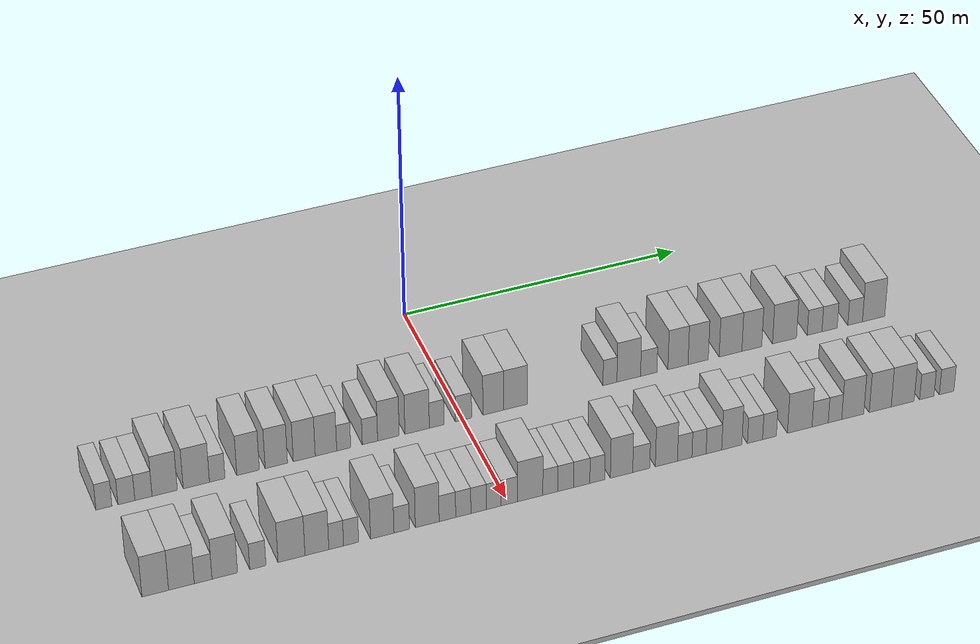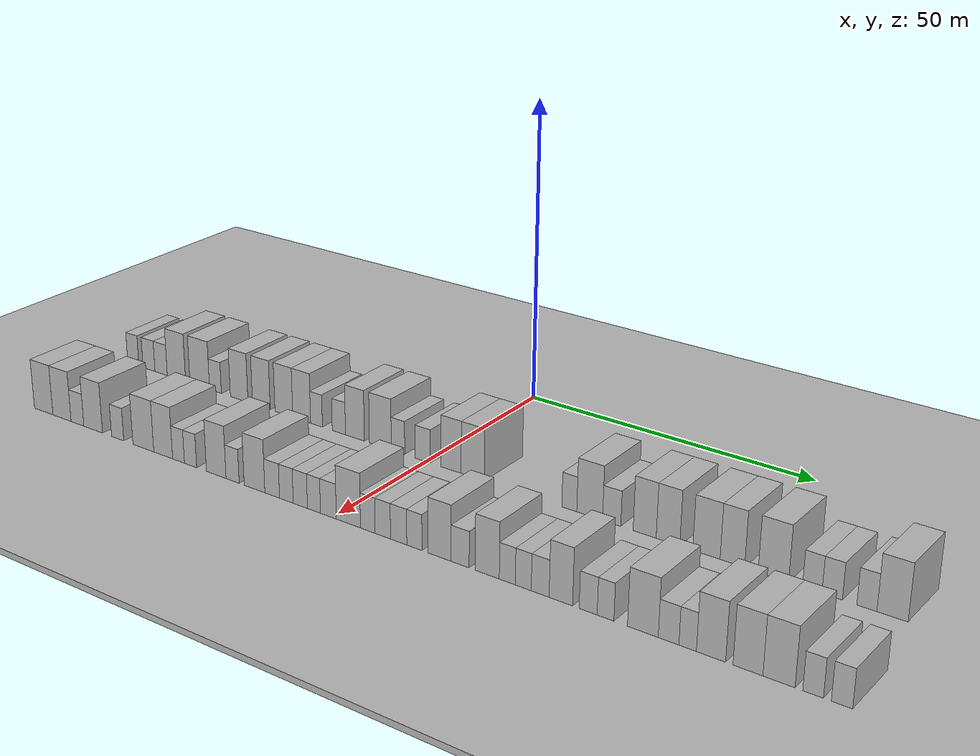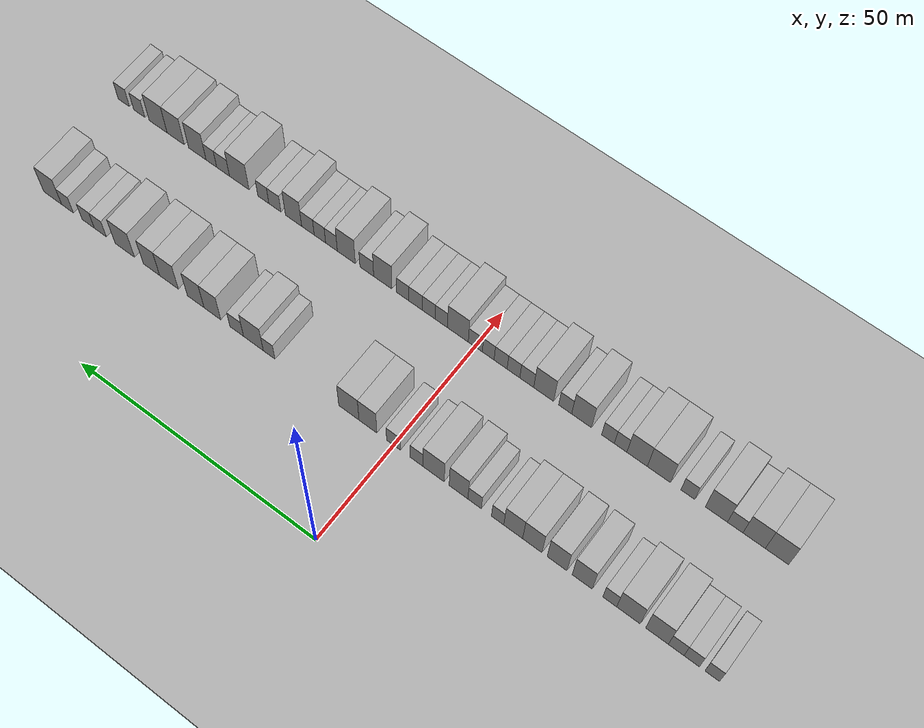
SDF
<sdf version="1.6">
 <world name="default">
  <include><name>ground_plane_1</name><uri>model://HANNAS_ground_plane</uri></include>
  <include>
   <name>ground_plane_2</name>
   <uri>model://HANNAS_ground_plane</uri>
   <pose>100 0 0  0 0 0</pose>
  </include>
  <model name="building_33">
   <static>1</static>
   <pose>25.0000 -61.6120 0 0.000000 0.000000 0.000000</pose>
   <link name="link">
    <pose>0 0 3.00 0 0 0</pose>
    <collision name="collision"><geometry><box><size>10.0000 2.6590 6.0000</size></box></geometry></collision>
    <visual name="visual">
     <cast_shadows>0</cast_shadows>
     <geometry><box><size>10.0000 2.6590 6.0000</size></box></geometry>
     <material>
      <script>
       <uri>model://HANNAS_wall/materials/scripts</uri>
       <uri>model://HANNAS_wall/materials/textures</uri>
       <name>vrc/HANNAS_wall</name>
      </script>
     </material>
    </visual>
   </link>
  </model>
  <model name="building_34">
   <static>1</static>
   <pose>25.0000 -57.8716 0 0.000000 0.000000 0.000000</pose>
   <link name="link">
    <pose>0 0 3.00 0 0 0</pose>
    <collision name="collision"><geometry><box><size>10.0000 2.8217 6.0000</size></box></geometry></collision>
    <visual name="visual">
     <cast_shadows>0</cast_shadows>
     <geometry><box><size>10.0000 2.8217 6.0000</size></box></geometry>
     <material>
      <script>
       <uri>model://HANNAS_wall/materials/scripts</uri>
       <uri>model://HANNAS_wall/materials/textures</uri>
       <name>vrc/HANNAS_wall</name>
      </script>
     </material>
    </visual>
   </link>
  </model>
  <model name="building_35">
   <static>1</static>
   <pose>25.0000 -55.0200 0 0.000000 0.000000 0.000000</pose>
   <link name="link">
    <pose>0 0 3.00 0 0 0</pose>
    <collision name="collision"><geometry><box><size>10.0000 2.8814 6.0000</size></box></geometry></collision>
    <visual name="visual">
     <cast_shadows>0</cast_shadows>
     <geometry><box><size>10.0000 2.8814 6.0000</size></box></geometry>
     <material>
      <script>
       <uri>model://HANNAS_wall/materials/scripts</uri>
       <uri>model://HANNAS_wall/materials/textures</uri>
       <name>vrc/HANNAS_wall</name>
      </script>
     </material>
    </visual>
   </link>
  </model>
  <model name="building_36">
   <static>1</static>
   <pose>25.0000 -51.4653 0 0.000000 0.000000 0.000000</pose>
   <link name="link">
    <pose>0 0 4.50 0 0 0</pose>
    <collision name="collision"><geometry><box><size>10.0000 4.2280 9.0000</size></box></geometry></collision>
    <visual name="visual">
     <cast_shadows>0</cast_shadows>
     <geometry><box><size>10.0000 4.2280 9.0000</size></box></geometry>
     <material>
      <script>
       <uri>model://HANNAS_wall/materials/scripts</uri>
       <uri>model://HANNAS_wall/materials/textures</uri>
       <name>vrc/HANNAS_wall</name>
      </script>
     </material>
    </visual>
   </link>
  </model>
  <model name="building_37">
   <static>1</static>
   <pose>25.0000 -46.1372 0 0.000000 0.000000 0.000000</pose>
   <link name="link">
    <pose>0 0 4.50 0 0 0</pose>
    <collision name="collision"><geometry><box><size>10.0000 4.4281 9.0000</size></box></geometry></collision>
    <visual name="visual">
     <cast_shadows>0</cast_shadows>
     <geometry><box><size>10.0000 4.4281 9.0000</size></box></geometry>
     <material>
      <script>
       <uri>model://HANNAS_wall/materials/scripts</uri>
       <uri>model://HANNAS_wall/materials/textures</uri>
       <name>vrc/HANNAS_wall</name>
      </script>
     </material>
    </visual>
   </link>
  </model>
  <model name="building_38">
   <static>1</static>
   <pose>25.0000 -42.6079 0 0.000000 0.000000 0.000000</pose>
   <link name="link">
    <pose>0 0 3.00 0 0 0</pose>
    <collision name="collision"><geometry><box><size>10.0000 2.6304 6.0000</size></box></geometry></collision>
    <visual name="visual">
     <cast_shadows>0</cast_shadows>
     <geometry><box><size>10.0000 2.6304 6.0000</size></box></geometry>
     <material>
      <script>
       <uri>model://HANNAS_wall/materials/scripts</uri>
       <uri>model://HANNAS_wall/materials/textures</uri>
       <name>vrc/HANNAS_wall</name>
      </script>
     </material>
    </visual>
   </link>
  </model>
  <model name="building_39">
   <static>1</static>
   <pose>25.0000 -37.3734 0 0.000000 0.000000 0.000000</pose>
   <link name="link">
    <pose>0 0 4.50 0 0 0</pose>
    <collision name="collision"><geometry><box><size>10.0000 3.8386 9.0000</size></box></geometry></collision>
    <visual name="visual">
     <cast_shadows>0</cast_shadows>
     <geometry><box><size>10.0000 3.8386 9.0000</size></box></geometry>
     <material>
      <script>
       <uri>model://HANNAS_wall/materials/scripts</uri>
       <uri>model://HANNAS_wall/materials/textures</uri>
       <name>vrc/HANNAS_wall</name>
      </script>
     </material>
    </visual>
   </link>
  </model>
  <model name="building_40">
   <static>1</static>
   <pose>25.0000 -32.5507 0 0.000000 0.000000 0.000000</pose>
   <link name="link">
    <pose>0 0 4.50 0 0 0</pose>
    <collision name="collision"><geometry><box><size>10.0000 3.8069 9.0000</size></box></geometry></collision>
    <visual name="visual">
     <cast_shadows>0</cast_shadows>
     <geometry><box><size>10.0000 3.8069 9.0000</size></box></geometry>
     <material>
      <script>
       <uri>model://HANNAS_wall/materials/scripts</uri>
       <uri>model://HANNAS_wall/materials/textures</uri>
       <name>vrc/HANNAS_wall</name>
      </script>
     </material>
    </visual>
   </link>
  </model>
  <model name="building_41">
   <static>1</static>
   <pose>25.0000 -27.7635 0 0.000000 0.000000 0.000000</pose>
   <link name="link">
    <pose>0 0 4.50 0 0 0</pose>
    <collision name="collision"><geometry><box><size>10.0000 3.7676 9.0000</size></box></geometry></collision>
    <visual name="visual">
     <cast_shadows>0</cast_shadows>
     <geometry><box><size>10.0000 3.7676 9.0000</size></box></geometry>
     <material>
      <script>
       <uri>model://HANNAS_wall/materials/scripts</uri>
       <uri>model://HANNAS_wall/materials/textures</uri>
       <name>vrc/HANNAS_wall</name>
      </script>
     </material>
    </visual>
   </link>
  </model>
  <model name="building_42">
   <static>1</static>
   <pose>25.0000 -24.0283 0 0.000000 0.000000 0.000000</pose>
   <link name="link">
    <pose>0 0 4.50 0 0 0</pose>
    <collision name="collision"><geometry><box><size>10.0000 3.7028 9.0000</size></box></geometry></collision>
    <visual name="visual">
     <cast_shadows>0</cast_shadows>
     <geometry><box><size>10.0000 3.7028 9.0000</size></box></geometry>
     <material>
      <script>
       <uri>model://HANNAS_wall/materials/scripts</uri>
       <uri>model://HANNAS_wall/materials/textures</uri>
       <name>vrc/HANNAS_wall</name>
      </script>
     </material>
    </visual>
   </link>
  </model>
  <model name="building_43">
   <static>1</static>
   <pose>25.0000 -20.9685 0 0.000000 0.000000 0.000000</pose>
   <link name="link">
    <pose>0 0 3.00 0 0 0</pose>
    <collision name="collision"><geometry><box><size>10.0000 2.4167 6.0000</size></box></geometry></collision>
    <visual name="visual">
     <cast_shadows>0</cast_shadows>
     <geometry><box><size>10.0000 2.4167 6.0000</size></box></geometry>
     <material>
      <script>
       <uri>model://HANNAS_wall/materials/scripts</uri>
       <uri>model://HANNAS_wall/materials/textures</uri>
       <name>vrc/HANNAS_wall</name>
      </script>
     </material>
    </visual>
   </link>
  </model>
  <model name="building_44">
   <static>1</static>
   <pose>25.0000 -16.4239 0 0.000000 0.000000 0.000000</pose>
   <link name="link">
    <pose>0 0 3.00 0 0 0</pose>
    <collision name="collision"><geometry><box><size>10.0000 2.6726 6.0000</size></box></geometry></collision>
    <visual name="visual">
     <cast_shadows>0</cast_shadows>
     <geometry><box><size>10.0000 2.6726 6.0000</size></box></geometry>
     <material>
      <script>
       <uri>model://HANNAS_wall/materials/scripts</uri>
       <uri>model://HANNAS_wall/materials/textures</uri>
       <name>vrc/HANNAS_wall</name>
      </script>
     </material>
    </visual>
   </link>
  </model>
  <model name="building_45">
   <static>1</static>
   <pose>25.0000 -13.2102 0 0.000000 0.000000 0.000000</pose>
   <link name="link">
    <pose>0 0 4.50 0 0 0</pose>
    <collision name="collision"><geometry><box><size>10.0000 3.7548 9.0000</size></box></geometry></collision>
    <visual name="visual">
     <cast_shadows>0</cast_shadows>
     <geometry><box><size>10.0000 3.7548 9.0000</size></box></geometry>
     <material>
      <script>
       <uri>model://HANNAS_wall/materials/scripts</uri>
       <uri>model://HANNAS_wall/materials/textures</uri>
       <name>vrc/HANNAS_wall</name>
      </script>
     </material>
    </visual>
   </link>
  </model>
  <model name="building_46">
   <static>1</static>
   <pose>25.0000 -8.2017 0 0.000000 0.000000 0.000000</pose>
   <link name="link">
    <pose>0 0 4.50 0 0 0</pose>
    <collision name="collision"><geometry><box><size>10.0000 4.2623 9.0000</size></box></geometry></collision>
    <visual name="visual">
     <cast_shadows>0</cast_shadows>
     <geometry><box><size>10.0000 4.2623 9.0000</size></box></geometry>
     <material>
      <script>
       <uri>model://HANNAS_wall/materials/scripts</uri>
       <uri>model://HANNAS_wall/materials/textures</uri>
       <name>vrc/HANNAS_wall</name>
      </script>
     </material>
    </visual>
   </link>
  </model>
  <model name="building_47">
   <static>1</static>
   <pose>25.0000 -4.7786 0 0.000000 0.000000 0.000000</pose>
   <link name="link">
    <pose>0 0 3.00 0 0 0</pose>
    <collision name="collision"><geometry><box><size>10.0000 2.5840 6.0000</size></box></geometry></collision>
    <visual name="visual">
     <cast_shadows>0</cast_shadows>
     <geometry><box><size>10.0000 2.5840 6.0000</size></box></geometry>
     <material>
      <script>
       <uri>model://HANNAS_wall/materials/scripts</uri>
       <uri>model://HANNAS_wall/materials/textures</uri>
       <name>vrc/HANNAS_wall</name>
      </script>
     </material>
    </visual>
   </link>
  </model>
  <model name="building_48">
   <static>1</static>
   <pose>25.0000 -0.0581 0 0.000000 0.000000 0.000000</pose>
   <link name="link">
    <pose>0 0 3.00 0 0 0</pose>
    <collision name="collision"><geometry><box><size>10.0000 2.8570 6.0000</size></box></geometry></collision>
    <visual name="visual">
     <cast_shadows>0</cast_shadows>
     <geometry><box><size>10.0000 2.8570 6.0000</size></box></geometry>
     <material>
      <script>
       <uri>model://HANNAS_wall/materials/scripts</uri>
       <uri>model://HANNAS_wall/materials/textures</uri>
       <name>vrc/HANNAS_wall</name>
      </script>
     </material>
    </visual>
   </link>
  </model>
  <model name="building_49">
   <static>1</static>
   <pose>25.0000 5.2194 0 0.000000 0.000000 0.000000</pose>
   <link name="link">
    <pose>0 0 4.50 0 0 0</pose>
    <collision name="collision"><geometry><box><size>10.0000 3.6980 9.0000</size></box></geometry></collision>
    <visual name="visual">
     <cast_shadows>0</cast_shadows>
     <geometry><box><size>10.0000 3.6980 9.0000</size></box></geometry>
     <material>
      <script>
       <uri>model://HANNAS_wall/materials/scripts</uri>
       <uri>model://HANNAS_wall/materials/textures</uri>
       <name>vrc/HANNAS_wall</name>
      </script>
     </material>
    </visual>
   </link>
  </model>
  <model name="building_50">
   <static>1</static>
   <pose>25.0000 9.1772 0 0.000000 0.000000 0.000000</pose>
   <link name="link">
    <pose>0 0 4.50 0 0 0</pose>
    <collision name="collision"><geometry><box><size>10.0000 4.2176 9.0000</size></box></geometry></collision>
    <visual name="visual">
     <cast_shadows>0</cast_shadows>
     <geometry><box><size>10.0000 4.2176 9.0000</size></box></geometry>
     <material>
      <script>
       <uri>model://HANNAS_wall/materials/scripts</uri>
       <uri>model://HANNAS_wall/materials/textures</uri>
       <name>vrc/HANNAS_wall</name>
      </script>
     </material>
    </visual>
   </link>
  </model>
  <model name="building_51">
   <static>1</static>
   <pose>25.0000 26.0716 0 0.000000 0.000000 0.000000</pose>
   <link name="link">
    <pose>0 0 3.00 0 0 0</pose>
    <collision name="collision"><geometry><box><size>10.0000 2.5238 6.0000</size></box></geometry></collision>
    <visual name="visual">
     <cast_shadows>0</cast_shadows>
     <geometry><box><size>10.0000 2.5238 6.0000</size></box></geometry>
     <material>
      <script>
       <uri>model://HANNAS_wall/materials/scripts</uri>
       <uri>model://HANNAS_wall/materials/textures</uri>
       <name>vrc/HANNAS_wall</name>
      </script>
     </material>
    </visual>
   </link>
  </model>
  <model name="building_52">
   <static>1</static>
   <pose>25.0000 29.4768 0 0.000000 0.000000 0.000000</pose>
   <link name="link">
    <pose>0 0 4.50 0 0 0</pose>
    <collision name="collision"><geometry><box><size>10.0000 4.2866 9.0000</size></box></geometry></collision>
    <visual name="visual">
     <cast_shadows>0</cast_shadows>
     <geometry><box><size>10.0000 4.2866 9.0000</size></box></geometry>
     <material>
      <script>
       <uri>model://HANNAS_wall/materials/scripts</uri>
       <uri>model://HANNAS_wall/materials/textures</uri>
       <name>vrc/HANNAS_wall</name>
      </script>
     </material>
    </visual>
   </link>
  </model>
  <model name="building_53">
   <static>1</static>
   <pose>25.0000 33.1085 0 0.000000 0.000000 0.000000</pose>
   <link name="link">
    <pose>0 0 3.00 0 0 0</pose>
    <collision name="collision"><geometry><box><size>10.0000 2.9769 6.0000</size></box></geometry></collision>
    <visual name="visual">
     <cast_shadows>0</cast_shadows>
     <geometry><box><size>10.0000 2.9769 6.0000</size></box></geometry>
     <material>
      <script>
       <uri>model://HANNAS_wall/materials/scripts</uri>
       <uri>model://HANNAS_wall/materials/textures</uri>
       <name>vrc/HANNAS_wall</name>
      </script>
     </material>
    </visual>
   </link>
  </model>
  <model name="building_54">
   <static>1</static>
   <pose>25.0000 38.4390 0 0.000000 0.000000 0.000000</pose>
   <link name="link">
    <pose>0 0 4.50 0 0 0</pose>
    <collision name="collision"><geometry><box><size>10.0000 3.6842 9.0000</size></box></geometry></collision>
    <visual name="visual">
     <cast_shadows>0</cast_shadows>
     <geometry><box><size>10.0000 3.6842 9.0000</size></box></geometry>
     <material>
      <script>
       <uri>model://HANNAS_wall/materials/scripts</uri>
       <uri>model://HANNAS_wall/materials/textures</uri>
       <name>vrc/HANNAS_wall</name>
      </script>
     </material>
    </visual>
   </link>
  </model>
  <model name="building_55">
   <static>1</static>
   <pose>25.0000 42.1352 0 0.000000 0.000000 0.000000</pose>
   <link name="link">
    <pose>0 0 4.50 0 0 0</pose>
    <collision name="collision"><geometry><box><size>10.0000 3.7081 9.0000</size></box></geometry></collision>
    <visual name="visual">
     <cast_shadows>0</cast_shadows>
     <geometry><box><size>10.0000 3.7081 9.0000</size></box></geometry>
     <material>
      <script>
       <uri>model://HANNAS_wall/materials/scripts</uri>
       <uri>model://HANNAS_wall/materials/textures</uri>
       <name>vrc/HANNAS_wall</name>
      </script>
     </material>
    </visual>
   </link>
  </model>
  <model name="building_56">
   <static>1</static>
   <pose>25.0000 48.0854 0 0.000000 0.000000 0.000000</pose>
   <link name="link">
    <pose>0 0 4.50 0 0 0</pose>
    <collision name="collision"><geometry><box><size>10.0000 4.1924 9.0000</size></box></geometry></collision>
    <visual name="visual">
     <cast_shadows>0</cast_shadows>
     <geometry><box><size>10.0000 4.1924 9.0000</size></box></geometry>
     <material>
      <script>
       <uri>model://HANNAS_wall/materials/scripts</uri>
       <uri>model://HANNAS_wall/materials/textures</uri>
       <name>vrc/HANNAS_wall</name>
      </script>
     </material>
    </visual>
   </link>
  </model>
  <model name="building_57">
   <static>1</static>
   <pose>25.0000 52.0209 0 0.000000 0.000000 0.000000</pose>
   <link name="link">
    <pose>0 0 4.50 0 0 0</pose>
    <collision name="collision"><geometry><box><size>10.0000 3.6785 9.0000</size></box></geometry></collision>
    <visual name="visual">
     <cast_shadows>0</cast_shadows>
     <geometry><box><size>10.0000 3.6785 9.0000</size></box></geometry>
     <material>
      <script>
       <uri>model://HANNAS_wall/materials/scripts</uri>
       <uri>model://HANNAS_wall/materials/textures</uri>
       <name>vrc/HANNAS_wall</name>
      </script>
     </material>
    </visual>
   </link>
  </model>
  <model name="building_58">
   <static>1</static>
   <pose>25.0000 58.0877 0 0.000000 0.000000 0.000000</pose>
   <link name="link">
    <pose>0 0 4.50 0 0 0</pose>
    <collision name="collision"><geometry><box><size>10.0000 4.4550 9.0000</size></box></geometry></collision>
    <visual name="visual">
     <cast_shadows>0</cast_shadows>
     <geometry><box><size>10.0000 4.4550 9.0000</size></box></geometry>
     <material>
      <script>
       <uri>model://HANNAS_wall/materials/scripts</uri>
       <uri>model://HANNAS_wall/materials/textures</uri>
       <name>vrc/HANNAS_wall</name>
      </script>
     </material>
    </visual>
   </link>
  </model>
  <model name="building_59">
   <static>1</static>
   <pose>25.0000 63.6962 0 0.000000 0.000000 0.000000</pose>
   <link name="link">
    <pose>0 0 3.00 0 0 0</pose>
    <collision name="collision"><geometry><box><size>10.0000 2.7621 6.0000</size></box></geometry></collision>
    <visual name="visual">
     <cast_shadows>0</cast_shadows>
     <geometry><box><size>10.0000 2.7621 6.0000</size></box></geometry>
     <material>
      <script>
       <uri>model://HANNAS_wall/materials/scripts</uri>
       <uri>model://HANNAS_wall/materials/textures</uri>
       <name>vrc/HANNAS_wall</name>
      </script>
     </material>
    </visual>
   </link>
  </model>
  <model name="building_60">
   <static>1</static>
   <pose>25.0000 66.5094 0 0.000000 0.000000 0.000000</pose>
   <link name="link">
    <pose>0 0 3.00 0 0 0</pose>
    <collision name="collision"><geometry><box><size>10.0000 2.8641 6.0000</size></box></geometry></collision>
    <visual name="visual">
     <cast_shadows>0</cast_shadows>
     <geometry><box><size>10.0000 2.8641 6.0000</size></box></geometry>
     <material>
      <script>
       <uri>model://HANNAS_wall/materials/scripts</uri>
       <uri>model://HANNAS_wall/materials/textures</uri>
       <name>vrc/HANNAS_wall</name>
      </script>
     </material>
    </visual>
   </link>
  </model>
  <model name="building_61">
   <static>1</static>
   <pose>25.0000 71.3160 0 0.000000 0.000000 0.000000</pose>
   <link name="link">
    <pose>0 0 3.00 0 0 0</pose>
    <collision name="collision"><geometry><box><size>10.0000 2.7490 6.0000</size></box></geometry></collision>
    <visual name="visual">
     <cast_shadows>0</cast_shadows>
     <geometry><box><size>10.0000 2.7490 6.0000</size></box></geometry>
     <material>
      <script>
       <uri>model://HANNAS_wall/materials/scripts</uri>
       <uri>model://HANNAS_wall/materials/textures</uri>
       <name>vrc/HANNAS_wall</name>
      </script>
     </material>
    </visual>
   </link>
  </model>
  <model name="building_62">
   <static>1</static>
   <pose>25.0000 74.7978 0 0.000000 0.000000 0.000000</pose>
   <link name="link">
    <pose>0 0 4.50 0 0 0</pose>
    <collision name="collision"><geometry><box><size>10.0000 4.2146 9.0000</size></box></geometry></collision>
    <visual name="visual">
     <cast_shadows>0</cast_shadows>
     <geometry><box><size>10.0000 4.2146 9.0000</size></box></geometry>
     <material>
      <script>
       <uri>model://HANNAS_wall/materials/scripts</uri>
       <uri>model://HANNAS_wall/materials/textures</uri>
       <name>vrc/HANNAS_wall</name>
      </script>
     </material>
    </visual>
   </link>
  </model>
  <model name="building_136">
   <static>1</static>
   <pose>47.0000 -59.3327 0 0.000000 0.000000 0.000000</pose>
   <link name="link">
    <pose>0 0 4.50 0 0 0</pose>
    <collision name="collision"><geometry><box><size>10.0000 4.3268 9.0000</size></box></geometry></collision>
    <visual name="visual">
     <cast_shadows>0</cast_shadows>
     <geometry><box><size>10.0000 4.3268 9.0000</size></box></geometry>
     <material>
      <script>
       <uri>model://HANNAS_wall/materials/scripts</uri>
       <uri>model://HANNAS_wall/materials/textures</uri>
       <name>vrc/HANNAS_wall</name>
      </script>
     </material>
    </visual>
   </link>
  </model>
  <model name="building_137">
   <static>1</static>
   <pose>47.0000 -55.0745 0 0.000000 0.000000 0.000000</pose>
   <link name="link">
    <pose>0 0 4.50 0 0 0</pose>
    <collision name="collision"><geometry><box><size>10.0000 4.1896 9.0000</size></box></geometry></collision>
    <visual name="visual">
     <cast_shadows>0</cast_shadows>
     <geometry><box><size>10.0000 4.1896 9.0000</size></box></geometry>
     <material>
      <script>
       <uri>model://HANNAS_wall/materials/scripts</uri>
       <uri>model://HANNAS_wall/materials/textures</uri>
       <name>vrc/HANNAS_wall</name>
      </script>
     </material>
    </visual>
   </link>
  </model>
  <model name="building_138">
   <static>1</static>
   <pose>47.0000 -51.5235 0 0.000000 0.000000 0.000000</pose>
   <link name="link">
    <pose>0 0 3.00 0 0 0</pose>
    <collision name="collision"><geometry><box><size>10.0000 2.9125 6.0000</size></box></geometry></collision>
    <visual name="visual">
     <cast_shadows>0</cast_shadows>
     <geometry><box><size>10.0000 2.9125 6.0000</size></box></geometry>
     <material>
      <script>
       <uri>model://HANNAS_wall/materials/scripts</uri>
       <uri>model://HANNAS_wall/materials/textures</uri>
       <name>vrc/HANNAS_wall</name>
      </script>
     </material>
    </visual>
   </link>
  </model>
  <model name="building_139">
   <static>1</static>
   <pose>47.0000 -47.9685 0 0.000000 0.000000 0.000000</pose>
   <link name="link">
    <pose>0 0 4.50 0 0 0</pose>
    <collision name="collision"><geometry><box><size>10.0000 4.1975 9.0000</size></box></geometry></collision>
    <visual name="visual">
     <cast_shadows>0</cast_shadows>
     <geometry><box><size>10.0000 4.1975 9.0000</size></box></geometry>
     <material>
      <script>
       <uri>model://HANNAS_wall/materials/scripts</uri>
       <uri>model://HANNAS_wall/materials/textures</uri>
       <name>vrc/HANNAS_wall</name>
      </script>
     </material>
    </visual>
   </link>
  </model>
  <model name="building_140">
   <static>1</static>
   <pose>47.0000 -42.5333 0 0.000000 0.000000 0.000000</pose>
   <link name="link">
    <pose>0 0 3.00 0 0 0</pose>
    <collision name="collision"><geometry><box><size>10.0000 2.6729 6.0000</size></box></geometry></collision>
    <visual name="visual">
     <cast_shadows>0</cast_shadows>
     <geometry><box><size>10.0000 2.6729 6.0000</size></box></geometry>
     <material>
      <script>
       <uri>model://HANNAS_wall/materials/scripts</uri>
       <uri>model://HANNAS_wall/materials/textures</uri>
       <name>vrc/HANNAS_wall</name>
      </script>
     </material>
    </visual>
   </link>
  </model>
  <model name="building_141">
   <static>1</static>
   <pose>47.0000 -36.9574 0 0.000000 0.000000 0.000000</pose>
   <link name="link">
    <pose>0 0 4.50 0 0 0</pose>
    <collision name="collision"><geometry><box><size>10.0000 4.4790 9.0000</size></box></geometry></collision>
    <visual name="visual">
     <cast_shadows>0</cast_shadows>
     <geometry><box><size>10.0000 4.4790 9.0000</size></box></geometry>
     <material>
      <script>
       <uri>model://HANNAS_wall/materials/scripts</uri>
       <uri>model://HANNAS_wall/materials/textures</uri>
       <name>vrc/HANNAS_wall</name>
      </script>
     </material>
    </visual>
   </link>
  </model>
  <model name="building_142">
   <static>1</static>
   <pose>47.0000 -32.7294 0 0.000000 0.000000 0.000000</pose>
   <link name="link">
    <pose>0 0 4.50 0 0 0</pose>
    <collision name="collision"><geometry><box><size>10.0000 3.9768 9.0000</size></box></geometry></collision>
    <visual name="visual">
     <cast_shadows>0</cast_shadows>
     <geometry><box><size>10.0000 3.9768 9.0000</size></box></geometry>
     <material>
      <script>
       <uri>model://HANNAS_wall/materials/scripts</uri>
       <uri>model://HANNAS_wall/materials/textures</uri>
       <name>vrc/HANNAS_wall</name>
      </script>
     </material>
    </visual>
   </link>
  </model>
  <model name="building_143">
   <static>1</static>
   <pose>47.0000 -29.5074 0 0.000000 0.000000 0.000000</pose>
   <link name="link">
    <pose>0 0 3.00 0 0 0</pose>
    <collision name="collision"><geometry><box><size>10.0000 2.4672 6.0000</size></box></geometry></collision>
    <visual name="visual">
     <cast_shadows>0</cast_shadows>
     <geometry><box><size>10.0000 2.4672 6.0000</size></box></geometry>
     <material>
      <script>
       <uri>model://HANNAS_wall/materials/scripts</uri>
       <uri>model://HANNAS_wall/materials/textures</uri>
       <name>vrc/HANNAS_wall</name>
      </script>
     </material>
    </visual>
   </link>
  </model>
  <model name="building_144">
   <static>1</static>
   <pose>47.0000 -27.0140 0 0.000000 0.000000 0.000000</pose>
   <link name="link">
    <pose>0 0 3.00 0 0 0</pose>
    <collision name="collision"><geometry><box><size>10.0000 2.5196 6.0000</size></box></geometry></collision>
    <visual name="visual">
     <cast_shadows>0</cast_shadows>
     <geometry><box><size>10.0000 2.5196 6.0000</size></box></geometry>
     <material>
      <script>
       <uri>model://HANNAS_wall/materials/scripts</uri>
       <uri>model://HANNAS_wall/materials/textures</uri>
       <name>vrc/HANNAS_wall</name>
      </script>
     </material>
    </visual>
   </link>
  </model>
  <model name="building_145">
   <static>1</static>
   <pose>47.0000 -21.7798 0 0.000000 0.000000 0.000000</pose>
   <link name="link">
    <pose>0 0 4.50 0 0 0</pose>
    <collision name="collision"><geometry><box><size>10.0000 3.9488 9.0000</size></box></geometry></collision>
    <visual name="visual">
     <cast_shadows>0</cast_shadows>
     <geometry><box><size>10.0000 3.9488 9.0000</size></box></geometry>
     <material>
      <script>
       <uri>model://HANNAS_wall/materials/scripts</uri>
       <uri>model://HANNAS_wall/materials/textures</uri>
       <name>vrc/HANNAS_wall</name>
      </script>
     </material>
    </visual>
   </link>
  </model>
  <model name="building_146">
   <static>1</static>
   <pose>47.0000 -18.4974 0 0.000000 0.000000 0.000000</pose>
   <link name="link">
    <pose>0 0 3.00 0 0 0</pose>
    <collision name="collision"><geometry><box><size>10.0000 2.6161 6.0000</size></box></geometry></collision>
    <visual name="visual">
     <cast_shadows>0</cast_shadows>
     <geometry><box><size>10.0000 2.6161 6.0000</size></box></geometry>
     <material>
      <script>
       <uri>model://HANNAS_wall/materials/scripts</uri>
       <uri>model://HANNAS_wall/materials/textures</uri>
       <name>vrc/HANNAS_wall</name>
      </script>
     </material>
    </visual>
   </link>
  </model>
  <model name="building_147">
   <static>1</static>
   <pose>47.0000 -14.1734 0 0.000000 0.000000 0.000000</pose>
   <link name="link">
    <pose>0 0 4.50 0 0 0</pose>
    <collision name="collision"><geometry><box><size>10.0000 4.0319 9.0000</size></box></geometry></collision>
    <visual name="visual">
     <cast_shadows>0</cast_shadows>
     <geometry><box><size>10.0000 4.0319 9.0000</size></box></geometry>
     <material>
      <script>
       <uri>model://HANNAS_wall/materials/scripts</uri>
       <uri>model://HANNAS_wall/materials/textures</uri>
       <name>vrc/HANNAS_wall</name>
      </script>
     </material>
    </visual>
   </link>
  </model>
  <model name="building_148">
   <static>1</static>
   <pose>47.0000 -10.7444 0 0.000000 0.000000 0.000000</pose>
   <link name="link">
    <pose>0 0 3.00 0 0 0</pose>
    <collision name="collision"><geometry><box><size>10.0000 2.8260 6.0000</size></box></geometry></collision>
    <visual name="visual">
     <cast_shadows>0</cast_shadows>
     <geometry><box><size>10.0000 2.8260 6.0000</size></box></geometry>
     <material>
      <script>
       <uri>model://HANNAS_wall/materials/scripts</uri>
       <uri>model://HANNAS_wall/materials/textures</uri>
       <name>vrc/HANNAS_wall</name>
      </script>
     </material>
    </visual>
   </link>
  </model>
  <model name="building_149">
   <static>1</static>
   <pose>47.0000 -8.0336 0 0.000000 0.000000 0.000000</pose>
   <link name="link">
    <pose>0 0 3.00 0 0 0</pose>
    <collision name="collision"><geometry><box><size>10.0000 2.5957 6.0000</size></box></geometry></collision>
    <visual name="visual">
     <cast_shadows>0</cast_shadows>
     <geometry><box><size>10.0000 2.5957 6.0000</size></box></geometry>
     <material>
      <script>
       <uri>model://HANNAS_wall/materials/scripts</uri>
       <uri>model://HANNAS_wall/materials/textures</uri>
       <name>vrc/HANNAS_wall</name>
      </script>
     </material>
    </visual>
   </link>
  </model>
  <model name="building_150">
   <static>1</static>
   <pose>47.0000 -5.3967 0 0.000000 0.000000 0.000000</pose>
   <link name="link">
    <pose>0 0 3.00 0 0 0</pose>
    <collision name="collision"><geometry><box><size>10.0000 2.6782 6.0000</size></box></geometry></collision>
    <visual name="visual">
     <cast_shadows>0</cast_shadows>
     <geometry><box><size>10.0000 2.6782 6.0000</size></box></geometry>
     <material>
      <script>
       <uri>model://HANNAS_wall/materials/scripts</uri>
       <uri>model://HANNAS_wall/materials/textures</uri>
       <name>vrc/HANNAS_wall</name>
      </script>
     </material>
    </visual>
   </link>
  </model>
  <model name="building_151">
   <static>1</static>
   <pose>47.0000 -2.8458 0 0.000000 0.000000 0.000000</pose>
   <link name="link">
    <pose>0 0 3.00 0 0 0</pose>
    <collision name="collision"><geometry><box><size>10.0000 2.4236 6.0000</size></box></geometry></collision>
    <visual name="visual">
     <cast_shadows>0</cast_shadows>
     <geometry><box><size>10.0000 2.4236 6.0000</size></box></geometry>
     <material>
      <script>
       <uri>model://HANNAS_wall/materials/scripts</uri>
       <uri>model://HANNAS_wall/materials/textures</uri>
       <name>vrc/HANNAS_wall</name>
      </script>
     </material>
    </visual>
   </link>
  </model>
  <model name="building_152">
   <static>1</static>
   <pose>47.0000 -0.1795 0 0.000000 0.000000 0.000000</pose>
   <link name="link">
    <pose>0 0 3.00 0 0 0</pose>
    <collision name="collision"><geometry><box><size>10.0000 2.9089 6.0000</size></box></geometry></collision>
    <visual name="visual">
     <cast_shadows>0</cast_shadows>
     <geometry><box><size>10.0000 2.9089 6.0000</size></box></geometry>
     <material>
      <script>
       <uri>model://HANNAS_wall/materials/scripts</uri>
       <uri>model://HANNAS_wall/materials/textures</uri>
       <name>vrc/HANNAS_wall</name>
      </script>
     </material>
    </visual>
   </link>
  </model>
  <model name="building_153">
   <static>1</static>
   <pose>47.0000 3.4585 0 0.000000 0.000000 0.000000</pose>
   <link name="link">
    <pose>0 0 4.50 0 0 0</pose>
    <collision name="collision"><geometry><box><size>10.0000 4.3671 9.0000</size></box></geometry></collision>
    <visual name="visual">
     <cast_shadows>0</cast_shadows>
     <geometry><box><size>10.0000 4.3671 9.0000</size></box></geometry>
     <material>
      <script>
       <uri>model://HANNAS_wall/materials/scripts</uri>
       <uri>model://HANNAS_wall/materials/textures</uri>
       <name>vrc/HANNAS_wall</name>
      </script>
     </material>
    </visual>
   </link>
  </model>
  <model name="building_154">
   <static>1</static>
   <pose>47.0000 6.9437 0 0.000000 0.000000 0.000000</pose>
   <link name="link">
    <pose>0 0 3.00 0 0 0</pose>
    <collision name="collision"><geometry><box><size>10.0000 2.6031 6.0000</size></box></geometry></collision>
    <visual name="visual">
     <cast_shadows>0</cast_shadows>
     <geometry><box><size>10.0000 2.6031 6.0000</size></box></geometry>
     <material>
      <script>
       <uri>model://HANNAS_wall/materials/scripts</uri>
       <uri>model://HANNAS_wall/materials/textures</uri>
       <name>vrc/HANNAS_wall</name>
      </script>
     </material>
    </visual>
   </link>
  </model>
  <model name="building_155">
   <static>1</static>
   <pose>47.0000 9.6001 0 0.000000 0.000000 0.000000</pose>
   <link name="link">
    <pose>0 0 3.00 0 0 0</pose>
    <collision name="collision"><geometry><box><size>10.0000 2.7097 6.0000</size></box></geometry></collision>
    <visual name="visual">
     <cast_shadows>0</cast_shadows>
     <geometry><box><size>10.0000 2.7097 6.0000</size></box></geometry>
     <material>
      <script>
       <uri>model://HANNAS_wall/materials/scripts</uri>
       <uri>model://HANNAS_wall/materials/textures</uri>
       <name>vrc/HANNAS_wall</name>
      </script>
     </material>
    </visual>
   </link>
  </model>
  <model name="building_156">
   <static>1</static>
   <pose>47.0000 12.3736 0 0.000000 0.000000 0.000000</pose>
   <link name="link">
    <pose>0 0 3.00 0 0 0</pose>
    <collision name="collision"><geometry><box><size>10.0000 2.8373 6.0000</size></box></geometry></collision>
    <visual name="visual">
     <cast_shadows>0</cast_shadows>
     <geometry><box><size>10.0000 2.8373 6.0000</size></box></geometry>
     <material>
      <script>
       <uri>model://HANNAS_wall/materials/scripts</uri>
       <uri>model://HANNAS_wall/materials/textures</uri>
       <name>vrc/HANNAS_wall</name>
      </script>
     </material>
    </visual>
   </link>
  </model>
  <model name="building_157">
   <static>1</static>
   <pose>47.0000 15.0904 0 0.000000 0.000000 0.000000</pose>
   <link name="link">
    <pose>0 0 3.00 0 0 0</pose>
    <collision name="collision"><geometry><box><size>10.0000 2.5962 6.0000</size></box></geometry></collision>
    <visual name="visual">
     <cast_shadows>0</cast_shadows>
     <geometry><box><size>10.0000 2.5962 6.0000</size></box></geometry>
     <material>
      <script>
       <uri>model://HANNAS_wall/materials/scripts</uri>
       <uri>model://HANNAS_wall/materials/textures</uri>
       <name>vrc/HANNAS_wall</name>
      </script>
     </material>
    </visual>
   </link>
  </model>
  <model name="building_158">
   <static>1</static>
   <pose>47.0000 19.3451 0 0.000000 0.000000 0.000000</pose>
   <link name="link">
    <pose>0 0 4.50 0 0 0</pose>
    <collision name="collision"><geometry><box><size>10.0000 3.9133 9.0000</size></box></geometry></collision>
    <visual name="visual">
     <cast_shadows>0</cast_shadows>
     <geometry><box><size>10.0000 3.9133 9.0000</size></box></geometry>
     <material>
      <script>
       <uri>model://HANNAS_wall/materials/scripts</uri>
       <uri>model://HANNAS_wall/materials/textures</uri>
       <name>vrc/HANNAS_wall</name>
      </script>
     </material>
    </visual>
   </link>
  </model>
  <model name="building_159">
   <static>1</static>
   <pose>47.0000 22.7942 0 0.000000 0.000000 0.000000</pose>
   <link name="link">
    <pose>0 0 3.00 0 0 0</pose>
    <collision name="collision"><geometry><box><size>10.0000 2.9850 6.0000</size></box></geometry></collision>
    <visual name="visual">
     <cast_shadows>0</cast_shadows>
     <geometry><box><size>10.0000 2.9850 6.0000</size></box></geometry>
     <material>
      <script>
       <uri>model://HANNAS_wall/materials/scripts</uri>
       <uri>model://HANNAS_wall/materials/textures</uri>
       <name>vrc/HANNAS_wall</name>
      </script>
     </material>
    </visual>
   </link>
  </model>
  <model name="building_160">
   <static>1</static>
   <pose>47.0000 27.2381 0 0.000000 0.000000 0.000000</pose>
   <link name="link">
    <pose>0 0 4.50 0 0 0</pose>
    <collision name="collision"><geometry><box><size>10.0000 3.9028 9.0000</size></box></geometry></collision>
    <visual name="visual">
     <cast_shadows>0</cast_shadows>
     <geometry><box><size>10.0000 3.9028 9.0000</size></box></geometry>
     <material>
      <script>
       <uri>model://HANNAS_wall/materials/scripts</uri>
       <uri>model://HANNAS_wall/materials/textures</uri>
       <name>vrc/HANNAS_wall</name>
      </script>
     </material>
    </visual>
   </link>
  </model>
  <model name="building_161">
   <static>1</static>
   <pose>47.0000 30.4714 0 0.000000 0.000000 0.000000</pose>
   <link name="link">
    <pose>0 0 3.00 0 0 0</pose>
    <collision name="collision"><geometry><box><size>10.0000 2.5638 6.0000</size></box></geometry></collision>
    <visual name="visual">
     <cast_shadows>0</cast_shadows>
     <geometry><box><size>10.0000 2.5638 6.0000</size></box></geometry>
     <material>
      <script>
       <uri>model://HANNAS_wall/materials/scripts</uri>
       <uri>model://HANNAS_wall/materials/textures</uri>
       <name>vrc/HANNAS_wall</name>
      </script>
     </material>
    </visual>
   </link>
  </model>
  <model name="building_162">
   <static>1</static>
   <pose>47.0000 33.0130 0 0.000000 0.000000 0.000000</pose>
   <link name="link">
    <pose>0 0 3.00 0 0 0</pose>
    <collision name="collision"><geometry><box><size>10.0000 2.5193 6.0000</size></box></geometry></collision>
    <visual name="visual">
     <cast_shadows>0</cast_shadows>
     <geometry><box><size>10.0000 2.5193 6.0000</size></box></geometry>
     <material>
      <script>
       <uri>model://HANNAS_wall/materials/scripts</uri>
       <uri>model://HANNAS_wall/materials/textures</uri>
       <name>vrc/HANNAS_wall</name>
      </script>
     </material>
    </visual>
   </link>
  </model>
  <model name="building_163">
   <static>1</static>
   <pose>47.0000 35.6642 0 0.000000 0.000000 0.000000</pose>
   <link name="link">
    <pose>0 0 3.00 0 0 0</pose>
    <collision name="collision"><geometry><box><size>10.0000 2.7831 6.0000</size></box></geometry></collision>
    <visual name="visual">
     <cast_shadows>0</cast_shadows>
     <geometry><box><size>10.0000 2.7831 6.0000</size></box></geometry>
     <material>
      <script>
       <uri>model://HANNAS_wall/materials/scripts</uri>
       <uri>model://HANNAS_wall/materials/textures</uri>
       <name>vrc/HANNAS_wall</name>
      </script>
     </material>
    </visual>
   </link>
  </model>
  <model name="building_164">
   <static>1</static>
   <pose>47.0000 38.8594 0 0.000000 0.000000 0.000000</pose>
   <link name="link">
    <pose>0 0 4.50 0 0 0</pose>
    <collision name="collision"><geometry><box><size>10.0000 3.6073 9.0000</size></box></geometry></collision>
    <visual name="visual">
     <cast_shadows>0</cast_shadows>
     <geometry><box><size>10.0000 3.6073 9.0000</size></box></geometry>
     <material>
      <script>
       <uri>model://HANNAS_wall/materials/scripts</uri>
       <uri>model://HANNAS_wall/materials/textures</uri>
       <name>vrc/HANNAS_wall</name>
      </script>
     </material>
    </visual>
   </link>
  </model>
  <model name="building_165">
   <static>1</static>
   <pose>47.0000 43.0177 0 0.000000 0.000000 0.000000</pose>
   <link name="link">
    <pose>0 0 3.00 0 0 0</pose>
    <collision name="collision"><geometry><box><size>10.0000 2.7094 6.0000</size></box></geometry></collision>
    <visual name="visual">
     <cast_shadows>0</cast_shadows>
     <geometry><box><size>10.0000 2.7094 6.0000</size></box></geometry>
     <material>
      <script>
       <uri>model://HANNAS_wall/materials/scripts</uri>
       <uri>model://HANNAS_wall/materials/textures</uri>
       <name>vrc/HANNAS_wall</name>
      </script>
     </material>
    </visual>
   </link>
  </model>
  <model name="building_166">
   <static>1</static>
   <pose>47.0000 45.6133 0 0.000000 0.000000 0.000000</pose>
   <link name="link">
    <pose>0 0 3.00 0 0 0</pose>
    <collision name="collision"><geometry><box><size>10.0000 2.4818 6.0000</size></box></geometry></collision>
    <visual name="visual">
     <cast_shadows>0</cast_shadows>
     <geometry><box><size>10.0000 2.4818 6.0000</size></box></geometry>
     <material>
      <script>
       <uri>model://HANNAS_wall/materials/scripts</uri>
       <uri>model://HANNAS_wall/materials/textures</uri>
       <name>vrc/HANNAS_wall</name>
      </script>
     </material>
    </visual>
   </link>
  </model>
  <model name="building_167">
   <static>1</static>
   <pose>47.0000 51.0758 0 0.000000 0.000000 0.000000</pose>
   <link name="link">
    <pose>0 0 4.50 0 0 0</pose>
    <collision name="collision"><geometry><box><size>10.0000 4.4432 9.0000</size></box></geometry></collision>
    <visual name="visual">
     <cast_shadows>0</cast_shadows>
     <geometry><box><size>10.0000 4.4432 9.0000</size></box></geometry>
     <material>
      <script>
       <uri>model://HANNAS_wall/materials/scripts</uri>
       <uri>model://HANNAS_wall/materials/textures</uri>
       <name>vrc/HANNAS_wall</name>
      </script>
     </material>
    </visual>
   </link>
  </model>
  <model name="building_168">
   <static>1</static>
   <pose>47.0000 54.7626 0 0.000000 0.000000 0.000000</pose>
   <link name="link">
    <pose>0 0 3.00 0 0 0</pose>
    <collision name="collision"><geometry><box><size>10.0000 2.9303 6.0000</size></box></geometry></collision>
    <visual name="visual">
     <cast_shadows>0</cast_shadows>
     <geometry><box><size>10.0000 2.9303 6.0000</size></box></geometry>
     <material>
      <script>
       <uri>model://HANNAS_wall/materials/scripts</uri>
       <uri>model://HANNAS_wall/materials/textures</uri>
       <name>vrc/HANNAS_wall</name>
      </script>
     </material>
    </visual>
   </link>
  </model>
  <model name="building_169">
   <static>1</static>
   <pose>47.0000 57.4540 0 0.000000 0.000000 0.000000</pose>
   <link name="link">
    <pose>0 0 3.00 0 0 0</pose>
    <collision name="collision"><geometry><box><size>10.0000 2.4525 6.0000</size></box></geometry></collision>
    <visual name="visual">
     <cast_shadows>0</cast_shadows>
     <geometry><box><size>10.0000 2.4525 6.0000</size></box></geometry>
     <material>
      <script>
       <uri>model://HANNAS_wall/materials/scripts</uri>
       <uri>model://HANNAS_wall/materials/textures</uri>
       <name>vrc/HANNAS_wall</name>
      </script>
     </material>
    </visual>
   </link>
  </model>
  <model name="building_170">
   <static>1</static>
   <pose>47.0000 60.6927 0 0.000000 0.000000 0.000000</pose>
   <link name="link">
    <pose>0 0 4.50 0 0 0</pose>
    <collision name="collision"><geometry><box><size>10.0000 4.0248 9.0000</size></box></geometry></collision>
    <visual name="visual">
     <cast_shadows>0</cast_shadows>
     <geometry><box><size>10.0000 4.0248 9.0000</size></box></geometry>
     <material>
      <script>
       <uri>model://HANNAS_wall/materials/scripts</uri>
       <uri>model://HANNAS_wall/materials/textures</uri>
       <name>vrc/HANNAS_wall</name>
      </script>
     </material>
    </visual>
   </link>
  </model>
  <model name="building_171">
   <static>1</static>
   <pose>47.0000 65.7163 0 0.000000 0.000000 0.000000</pose>
   <link name="link">
    <pose>0 0 4.50 0 0 0</pose>
    <collision name="collision"><geometry><box><size>10.0000 4.0224 9.0000</size></box></geometry></collision>
    <visual name="visual">
     <cast_shadows>0</cast_shadows>
     <geometry><box><size>10.0000 4.0224 9.0000</size></box></geometry>
     <material>
      <script>
       <uri>model://HANNAS_wall/materials/scripts</uri>
       <uri>model://HANNAS_wall/materials/textures</uri>
       <name>vrc/HANNAS_wall</name>
      </script>
     </material>
    </visual>
   </link>
  </model>
  <model name="building_172">
   <static>1</static>
   <pose>47.0000 69.8417 0 0.000000 0.000000 0.000000</pose>
   <link name="link">
    <pose>0 0 4.50 0 0 0</pose>
    <collision name="collision"><geometry><box><size>10.0000 4.2285 9.0000</size></box></geometry></collision>
    <visual name="visual">
     <cast_shadows>0</cast_shadows>
     <geometry><box><size>10.0000 4.2285 9.0000</size></box></geometry>
     <material>
      <script>
       <uri>model://HANNAS_wall/materials/scripts</uri>
       <uri>model://HANNAS_wall/materials/textures</uri>
       <name>vrc/HANNAS_wall</name>
      </script>
     </material>
    </visual>
   </link>
  </model>
  <model name="building_173">
   <static>1</static>
   <pose>47.0000 74.2831 0 0.000000 0.000000 0.000000</pose>
   <link name="link">
    <pose>0 0 3.00 0 0 0</pose>
    <collision name="collision"><geometry><box><size>10.0000 2.6542 6.0000</size></box></geometry></collision>
    <visual name="visual">
     <cast_shadows>0</cast_shadows>
     <geometry><box><size>10.0000 2.6542 6.0000</size></box></geometry>
     <material>
      <script>
       <uri>model://HANNAS_wall/materials/scripts</uri>
       <uri>model://HANNAS_wall/materials/textures</uri>
       <name>vrc/HANNAS_wall</name>
      </script>
     </material>
    </visual>
   </link>
  </model>
  <model name="building_174">
   <static>1</static>
   <pose>47.0000 77.9588 0 0.000000 0.000000 0.000000</pose>
   <link name="link">
    <pose>0 0 3.00 0 0 0</pose>
    <collision name="collision"><geometry><box><size>10.0000 2.6973 6.0000</size></box></geometry></collision>
    <visual name="visual">
     <cast_shadows>0</cast_shadows>
     <geometry><box><size>10.0000 2.6973 6.0000</size></box></geometry>
     <material>
      <script>
       <uri>model://HANNAS_wall/materials/scripts</uri>
       <uri>model://HANNAS_wall/materials/textures</uri>
       <name>vrc/HANNAS_wall</name>
      </script>
     </material>
    </visual>
   </link>
  </model>
 </world>
</sdf>
